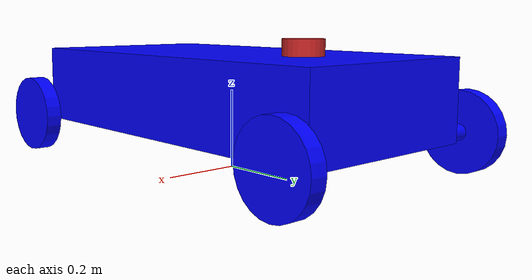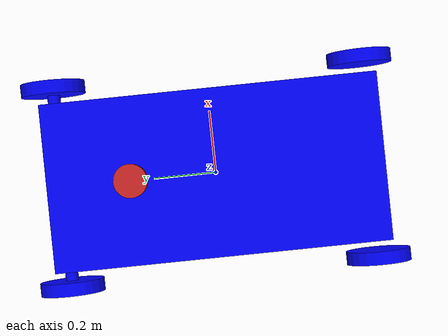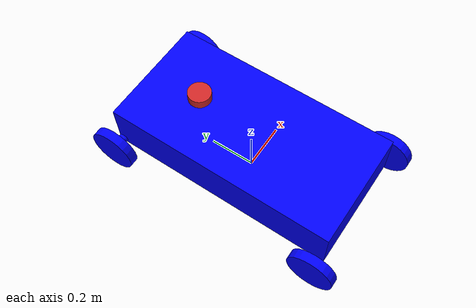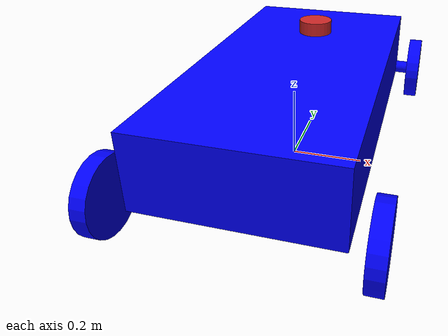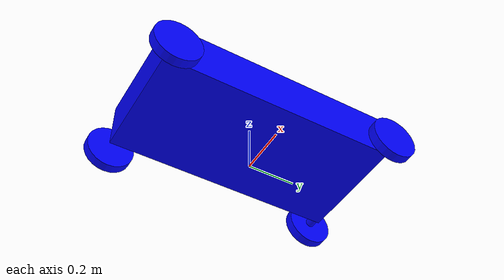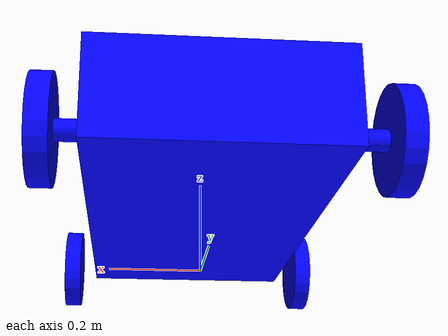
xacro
<?xml version="1.0"?>
<robot xmlns:xacro="http://www.ros.org/wiki/xacro" name="simple_car">

<xacro:include filename="inertial.xacro"/>

    <xacro:property name="wheel_width" value="0.04"/>
    <xacro:property name="wheel_radius" value="0.1"/>

    <!-- Wheel macro -->
    <xacro:macro name="wheel" params="name">
        <link name="${name}">
            <visual>
                <geometry>
                    <cylinder length="${wheel_width}" radius="${wheel_radius}" />
                </geometry>
                <material name="blue"/>
            </visual>
            <collision>
                <geometry>
                    <cylinder length="${wheel_width}" radius="${wheel_radius}" />
                </geometry>
            </collision>
             <xacro:inertial_cylinder mass="0.1" length="${wheel_width}" radius="${wheel_radius}"/>
        </link>

        <gazebo reference="${name}">
            <material>Gazebo/Blue</material>
        </gazebo>

    </xacro:macro>

    <xacro:property name="hinge_width" value="0.04"/>
    <xacro:property name="hinge_radius" value="0.02"/>

    <!-- Hinge macro -->
    <xacro:macro name="hinge" params="name">
        <link name="${name}">
            <visual>
                <geometry>
                    <cylinder length="${hinge_width}" radius="${hinge_radius}" />
                </geometry>
                <material name="blue"/>
            </visual>
            <collision>
                <geometry>
                    <cylinder length="${hinge_width}" radius="${hinge_radius}" />
                </geometry>
            </collision>
             <xacro:inertial_cylinder mass="0.1" length="${hinge_width}" radius="${hinge_radius}"/>
        </link>

        <gazebo reference="${name}">
            <material>Gazebo/Blue</material>
        </gazebo>

    </xacro:macro>

    <!-- Base Link -->

    <link name="base_link">
    </link>

    <!-- BASE_FOOTPRINT LINK necessary for slam_toolbox-->

    <joint name="base_footprint_joint" type="fixed">
        <origin xyz="0.0 0.0 0.0" rpy="0.0 0.0 0.0"/>
        <parent link="base_link"/>
        <child link="base_footprint"/>
    </joint>

    <link name="base_footprint">
    </link>

    <!-- Chassis Link -->
    <link name="chassis_link">
        <visual>
        <geometry>
            <box size="0.5 1.0 0.2"/>
        </geometry>
        <origin xyz="0 0 0" rpy="0 0 0"/>
        <material name="blue">
            <color rgba="0 0 1 1"/>
        </material>
        </visual>

        <xacro:inertial_box mass="0.5" x="0.5" y="1.0" z="0.15"/>

    </link>

    <gazebo reference="chassis_link">
            <material>Gazebo/Orange</material>
    </gazebo>

    <!-- Base Chassis Joint -->
    <joint name="base_chassis_joint" type="fixed">
        <parent link="base_link"/>
        <child link="chassis_link"/>
        <origin xyz="0 0 0.2" rpy="0 0 0 "/>
    </joint>

    <!-- Front Left Hinge -->
    <xacro:hinge name="front_left_hinge"/>

    <joint name="front_left_hinge_joint" type="revolute">
            <parent link="chassis_link"/>
            <child link="front_left_hinge"/>
            <origin xyz="-0.27 0.48 -0.08" rpy="0 ${-pi/2} 0"/>
            <limit upper="0.5236" lower="-0.5236" velocity="20" effort="1"/>
            <axis xyz="1 0 0"/>
    </joint>

    <gazebo reference="front_left_hinge">
        <material>Gazebo/Green</material>
    </gazebo>

    <!-- Front Left Wheel -->
    <xacro:wheel name="front_left_link"/>

    <joint name="front_left_joint" type="continuous">
            <parent link="front_left_hinge"/>
            <child link="front_left_link"/>
            <origin xyz="0.0 0.0 0.04" rpy="0 0 0"/>
            <axis xyz="0 0 1"/>
    </joint>

    <gazebo reference="front_left_link">
        <material>Gazebo/Red</material>
    </gazebo>

    <!-- Front Right Hinge -->
    <xacro:hinge name="front_right_hinge"/>

    <joint name="front_right_hinge_joint" type="revolute">
            <parent link="chassis_link"/>
            <child link="front_right_hinge"/>
            <origin xyz="0.27 0.48 -0.08" rpy="0 ${-pi/2} 0"/>
            <limit upper="0.5236" lower="-0.5236" velocity="20" effort="1"/>
            <axis xyz="1 0 0"/>
    </joint>

    <gazebo reference="front_right_hinge">
        <material>Gazebo/Green</material>
    </gazebo>

    <!-- Front Right Wheel -->
    <xacro:wheel name="front_right_link"/>

    <joint name="front_right_joint" type="continuous">
            <parent link="front_right_hinge"/>
            <child link="front_right_link"/>
            <origin xyz="0 0 -0.04" rpy="0 0 0"/>
            <axis xyz="0 0 1"/>
    </joint>

    <gazebo reference="front_right_link">
        <material>Gazebo/Red</material>
    </gazebo>

    <!-- Rear Left Wheel -->
    <xacro:wheel name="rear_left_link"/>

    <joint name="rear_left_joint" type="continuous">
            <parent link="chassis_link"/>
            <child link="rear_left_link"/>
            <origin xyz="-0.31 -0.48 -0.08" rpy="0 ${-pi/2} 0"/>
            <axis xyz="0 0 1"/>
    </joint>

    <!-- Rear Right Wheel -->
    <xacro:wheel name="rear_right_link" />

    <joint name="rear_right_joint" type="continuous">
            <parent link="chassis_link"/>
            <child link="rear_right_link"/>
            <origin xyz="0.31 -0.48 -0.08" rpy="0 ${-pi/2} 0"/> <!-- Default value for x is "0.27" -->
            <axis xyz="0 0 1"/>
    </joint>

    <xacro:include filename="ros2_ack.xacro"/>

        <joint name="laser_joint" type="fixed">
        <parent link="chassis_link"/>
        <child link="laser_frame"/>
        <origin xyz="0 0.25 0.12" rpy="0 0 0"/>
    </joint>

    <link name="laser_frame">
        <visual>
            <geometry>
                <cylinder radius="0.05" length="0.04"/>
            </geometry>
            <material name="red"/>
        </visual>
        <collision>
            <geometry>
                <cylinder radius="0.05" length="0.04"/>
            </geometry>
        </collision>
        <xacro:Inertial_cylinder mass="0.1" length="0.04" radius="0.05">
            <origin xyz="0 0 0" rpy="0 0 0"/>
        </xacro:Inertial_cylinder>
    </link>

    <gazebo reference="laser_frame">
        <material>Gazebo/Red</material>

        <sensor name="laser" type="ray">
            <pose> 0 0 0 0 0 0 </pose>
            <visualize>true</visualize>
            <update_rate>10</update_rate>
            <ray>
                <scan>
                    <horizontal>
                        <samples>360</samples>
                        <min_angle>-3.14</min_angle>
                        <max_angle>3.14</max_angle>
                    </horizontal>
                </scan>
                <range>
                    <min>0.3</min>
                    <max>12</max>
                </range>
            </ray>
            <plugin name="laser_controller" filename="libgazebo_ros_ray_sensor.so">
                <ros>
                    <argument>~/out:=scan</argument>
                </ros>
                <output_type>sensor_msgs/LaserScan</output_type>
                <frame_name>laser_frame</frame_name>
            </plugin>
        </sensor>
    </gazebo>
</robot>

<?xml version="1.0"?>
<robot xmlns:xacro="http://www.ros.org/wiki/xacro" name="simple_car">

<xacro:include filename="inertial.xacro"/>

    <xacro:property name="wheel_width" value="0.026"/>
    <xacro:property name="wheel_radius" value="0.033"/>

    <!-- Wheel macro -->
    <xacro:macro name="wheel" params="name">
        <link name="${name}">
            <visual>
                <origin xyz="0 0 0" rpy="${-pi/2} 0 0"/>    <!--NEW-->
                <geometry>
                    <cylinder length="${wheel_width}" radius="${wheel_radius}" />
                </geometry>
                <material name="blue"/>
            </visual>
            <collision>
                <origin xyz="0 0 0" rpy="${-pi/2} 0 0"/>    <!--NEW-->
                <geometry>
                    <cylinder length="${wheel_width}" radius="${wheel_radius}" />
                </geometry>
            </collision>
            <xacro:inertial_cylinder mass="0.1" length="${wheel_width}" radius="${wheel_radius}"/>

        </link>

        <gazebo reference="${name}">
            <material>Gazebo/Blue</material>
        </gazebo>

    </xacro:macro>

    <xacro:property name="hinge_width" value="0.008"/>
    <xacro:property name="hinge_radius" value="0.0066"/>

    <!-- Hinge macro -->
    <xacro:macro name="hinge" params="name">
        <link name="${name}">
            <visual>
                <origin xyz="0 0 0" rpy="${-pi/2} 0 0"/>    <!--NEW-->
                <geometry>
                    <cylinder length="${hinge_width}" radius="${hinge_radius}" />
                </geometry>
                <material name="blue"/>
            </visual>
            <collision>
                <origin xyz="0 0 0" rpy="${-pi/2} 0 0"/>    <!--NEW-->
                <geometry>
                    <cylinder length="${hinge_width}" radius="${hinge_radius}" />
                </geometry>
            </collision>
            <xacro:inertial_cylinder mass="0.1" length="${hinge_width}" radius="${hinge_radius}"/>

        </link>

        <gazebo reference="${name}">
            <material>Gazebo/Blue</material>
        </gazebo>

    </xacro:macro>

    <!-- Base Link -->

    <link name="base_link">
    </link>

    <!-- BASE_FOOTPRINT LINK necessary for slam_toolbox-->

    <joint name="base_footprint_joint" type="fixed">
        <origin xyz="0.0 0.0 0.0" rpy="0.0 0.0 0.0"/>
        <parent link="base_link"/>
        <child link="base_footprint"/>
    </joint>

    <link name="base_footprint">
    </link>

    <!-- Chassis Link -->
    <link name="chassis_link">
        <visual>
        <geometry>
            <box size="0.4 0.2 0.1"/>
        </geometry>
        <origin xyz="0 0 0" rpy="0 0 0"/>
        <material name="blue">
            <color rgba="0 0 1 1"/>
        </material>
        </visual>

        <xacro:inertial_box mass="0.5" x="0.4" y="0.2" z="0.1"/>

    </link>

    <gazebo reference="chassis_link">
        <material>Gazebo/Orange</material>
    </gazebo>

    <!-- Base Chassis Joint -->
    <joint name="base_chassis_joint" type="fixed">
        <parent link="base_link"/>
        <child link="chassis_link"/>
        <origin xyz="0 0 0.05" rpy="0 0 0 "/>
    </joint>

    <!-- Front Left Hinge -->
    <xacro:hinge name="front_left_hinge"/>

    <joint name="front_left_hinge_joint" type="revolute">
            <parent link="chassis_link"/>
            <child link="front_left_hinge"/>
            <origin xyz="0.15 0.104 -0.05" rpy="0 0 0"/>
            <limit upper="0.5236" lower="-0.5236" velocity="20" effort="1"/>
            <axis xyz="0 0 1"/>
    </joint>

    <gazebo reference="front_left_hinge">
        <material>Gazebo/Green</material>
    </gazebo>

    <!-- Front Left Wheel -->
    <xacro:wheel name="front_left_link"/>

    <joint name="front_left_joint" type="continuous">
            <parent link="front_left_hinge"/>
            <child link="front_left_link"/>
            <origin xyz="0.0 0.017 0.0" rpy="0 0 0"/>
            <axis xyz="0 1 0"/>
    </joint>

    <gazebo reference="front_left_link">
        <material>Gazebo/Red</material>

    </gazebo>

    <!-- Front Right Hinge -->
    <xacro:hinge name="front_right_hinge"/>

    <joint name="front_right_hinge_joint" type="revolute">
            <parent link="chassis_link"/>
            <child link="front_right_hinge"/>
            <origin xyz="0.15 -0.104 -0.05" rpy="0 0 0"/>  <!-- pi -->
            <limit upper="0.5236" lower="-0.5236" velocity="20" effort="1"/>
            <axis xyz="0 0 1"/>
    </joint>

    <gazebo reference="front_right_hinge">
        <material>Gazebo/Green</material>
    </gazebo>

    <!-- Front Right Wheel -->
    <xacro:wheel name="front_right_link"/>

    <joint name="front_right_joint" type="continuous">
            <parent link="front_right_hinge"/>
            <child link="front_right_link"/>
            <origin xyz="0.0 -0.017 0.0" rpy="0 0 0"/>
            <axis xyz="0 1 0"/>
    </joint>

    <gazebo reference="front_right_link">
        <material>Gazebo/Red</material>
    </gazebo>

    <!-- Rear Left Wheel -->
    <xacro:wheel name="rear_left_link"/>

    <joint name="rear_left_joint" type="continuous">
            <parent link="chassis_link"/>
            <child link="rear_left_link"/>
            <origin xyz = "-0.15 0.121 -0.05" rpy="0 0 0"/> <!--pi-->
            <axis xyz="0 1 0"/>
    </joint>

    <!-- Rear Right Wheel -->
    <xacro:wheel name="rear_right_link" />

    <joint name="rear_right_joint" type="continuous">
            <parent link="chassis_link"/>
            <child link="rear_right_link"/>
            <origin xyz = "-0.15 -0.121 -0.05" rpy="0 0 0"/> <!-- pi    Default value for x is "0.27" -->
            <axis xyz="0 1 0"/>
    </joint>

    <xacro:include filename="ros2_ack.xacro"/>

        <joint name="laser_joint" type="fixed">
        <parent link="chassis_link"/>
        <child link="laser_frame"/>
        <origin xyz="0.1 0.0 0.08" rpy="0 0 0"/>
    </joint>

    <link name="laser_frame">
        <visual>
            <geometry>
                <cylinder radius="0.05" length="0.04"/>
            </geometry>
            <material name="red"/>
        </visual>
        <collision>
            <geometry>
                <cylinder radius="0.05" length="0.04"/>
            </geometry>
        </collision>
        <xacro:Inertial_cylinder mass="0.0001" length="0.04" radius="0.05">
            <origin xyz="0 0 0" rpy="0 0 0"/>
        </xacro:Inertial_cylinder>
    </link>

    <gazebo reference="laser_frame">
        <material>Gazebo/Red</material>

        <sensor name="laser" type="ray">
            <pose> 0 0 0 0 0 0 </pose>
            <visualize>true</visualize>
            <update_rate>10</update_rate>
            <ray>
                <scan>
                    <horizontal>
                        <samples>360</samples>
                        <min_angle>-3.14</min_angle>
                        <max_angle>3.14</max_angle>
                    </horizontal>
                </scan>
                <range>
                    <min>0.3</min>
                    <max>12</max>
                </range>
            </ray>
            <plugin name="laser_controller" filename="libgazebo_ros_ray_sensor.so">
                <ros>
                    <argument>~/out:=scan</argument>
                </ros>
                <output_type>sensor_msgs/LaserScan</output_type>
                <frame_name>laser_frame</frame_name>
            </plugin>
        </sensor>
    </gazebo>
</robot>

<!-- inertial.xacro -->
<robot xmlns:xacro="http://www.ros.org/wiki/xacro" >

    <!-- Specify some standard inertial calculations https://en.wikipedia.org/wiki/List_of_moments_of_inertia -->
    <!-- These make use of xacro's mathematical functionality -->

    <xacro:macro name="inertial_box" params="mass x y z">
        <inertial>
            <mass value="${mass}" />
            <inertia ixx="${(1/12) * mass * (y*y+z*z)}" ixy="0.0" ixz="0.0"
                    iyy="${(1/12) * mass * (x*x+z*z)}" iyz="0.0"
                    izz="${(1/12) * mass * (x*x+y*y)}" />
        </inertial>
    </xacro:macro>

    <xacro:macro name="inertial_cylinder" params="mass length radius">
        <inertial>
            <origin xyz="0 0 0" rpy="${-pi/2} 0 0"/>    <!--NEW-->
            <mass value="${mass}" />
            <inertia ixx="${(1/12) * mass * (3*radius*radius + length*length)}" ixy="0.0" ixz="0.0"
                    iyy="${(1/12) * mass * (3*radius*radius + length*length)}" iyz="0.0"
                    izz="${(1/2) * mass * (radius*radius)}" />
        </inertial>
    </xacro:macro>
    <xacro:macro name="Inertial_box" params="mass x y z *origin">
        <inertial>
            <xacro:insert_block name="origin"/>
            <mass value="${mass}" />
            <inertia ixx="${(1/12) * mass * (y*y+z*z)}" ixy="0.0" ixz="0.0"
                    iyy="${(1/12) * mass * (x*x+z*z)}" iyz="0.0"
                    izz="${(1/12) * mass * (x*x+y*y)}" />
        </inertial>
    </xacro:macro>

    <xacro:macro name="Inertial_cylinder" params="mass length radius *origin">
        <inertial>
            <xacro:insert_block name="origin"/>
            <mass value="${mass}" />
            <inertia ixx="${(1/12) * mass * (3*radius*radius + length*length)}" ixy="0.0" ixz="0.0"
                    iyy="${(1/12) * mass * (3*radius*radius + length*length)}" iyz="0.0"
                    izz="${(1/2) * mass * (radius*radius)}" />
        </inertial>
    </xacro:macro>

</robot>
